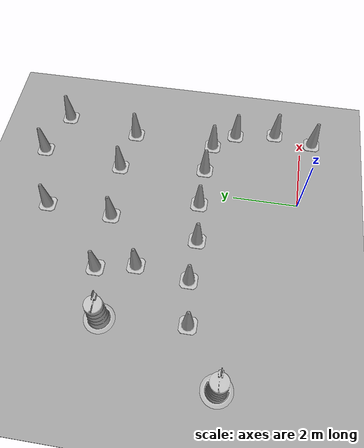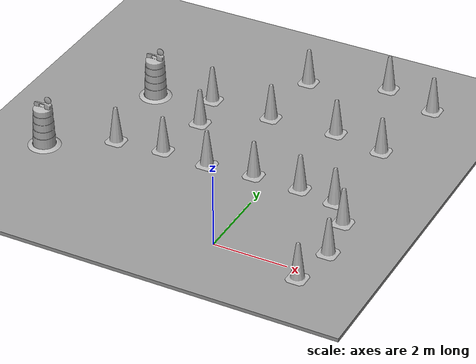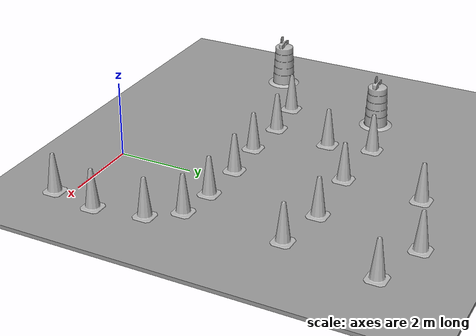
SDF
<sdf version="1.7">
 <world name="default">
  <light name="sun" type="directional">
   <pose>0 0 10 0 -0 0</pose>
   <diffuse>0.8 0.8 0.8 1</diffuse>
   <specular>0.2 0.2 0.2 1</specular>
   <attenuation>
    <range>1000</range>
    <constant>0.9</constant>
    <linear>0.01</linear>
    <quadratic>0.001</quadratic>
   </attenuation>
   <direction>-0.5 0.1 -0.9</direction>
   <spot><inner_angle>0</inner_angle><outer_angle>0</outer_angle><falloff>0</falloff></spot>
  </light>
  <model name="ground_plane">
   <static>1</static>
   <link name="link">
    <collision name="collision">
     <geometry><plane><normal>0 0 1</normal><size>100 100</size></plane></geometry>
     <surface><friction><ode><mu>100</mu><mu2>50</mu2></ode></friction></surface>
    </collision>
    <visual name="visual">
     <cast_shadows>0</cast_shadows>
     <geometry><plane><normal>0 0 1</normal><size>100 100</size></plane></geometry>
     <material>
      <script><uri>file://media/materials/scripts/gazebo.material</uri><name>Gazebo/Grey</name></script>
     </material>
    </visual>
   </link>
  </model>
  <gravity>0 0 -9.8</gravity>
  <magnetic_field>6e-06 2.3e-05 -4.2e-05</magnetic_field>
  <atmosphere type="adiabatic"/>
  <physics type="ode">
   <max_step_size>0.001</max_step_size>
   <real_time_factor>1</real_time_factor>
   <real_time_update_rate>1000</real_time_update_rate>
  </physics>
  <scene><ambient>0.4 0.4 0.4 1</ambient><background>0.7 0.7 0.7 1</background><shadows>1</shadows></scene>
  <audio><device>default</device></audio>
  <spherical_coordinates>
   <surface_model>EARTH_WGS84</surface_model>
   <latitude_deg>0</latitude_deg>
   <longitude_deg>0</longitude_deg>
   <elevation>0</elevation>
   <heading_deg>0</heading_deg>
  </spherical_coordinates>
  <model name="Construction Cone">
   <link name="link">
    <collision name="collision">
     <geometry>
      <mesh><scale>10 10 10</scale><uri>model://construction_cone/meshes/construction_cone.dae</uri></mesh>
     </geometry>
    </collision>
    <visual name="visual">
     <geometry>
      <mesh><scale>10 10 10</scale><uri>model://construction_cone/meshes/construction_cone.dae</uri></mesh>
     </geometry>
    </visual>
    <inertial>
     <inertia><ixx>1</ixx><ixy>0</ixy><ixz>0</ixz><iyy>1</iyy><iyz>0</iyz><izz>1</izz></inertia>
     <mass>1</mass>
    </inertial>
   </link>
   <pose>1.89637 2.9073 -0 0 -1e-06 0</pose>
  </model>
  <model name="Construction Cone_0">
   <link name="link">
    <collision name="collision">
     <geometry>
      <mesh><scale>10 10 10</scale><uri>model://construction_cone/meshes/construction_cone.dae</uri></mesh>
     </geometry>
    </collision>
    <visual name="visual">
     <geometry>
      <mesh><scale>10 10 10</scale><uri>model://construction_cone/meshes/construction_cone.dae</uri></mesh>
     </geometry>
    </visual>
    <inertial>
     <inertia><ixx>1</ixx><ixy>0</ixy><ixz>0</ixz><iyy>1</iyy><iyz>0</iyz><izz>1</izz></inertia>
     <mass>1</mass>
    </inertial>
   </link>
   <pose>2.46259 2.19439 -0 0 -1e-06 0</pose>
  </model>
  <model name="Construction Cone_1">
   <link name="link">
    <collision name="collision">
     <geometry>
      <mesh><scale>10 10 10</scale><uri>model://construction_cone/meshes/construction_cone.dae</uri></mesh>
     </geometry>
    </collision>
    <visual name="visual">
     <geometry>
      <mesh><scale>10 10 10</scale><uri>model://construction_cone/meshes/construction_cone.dae</uri></mesh>
     </geometry>
    </visual>
    <inertial>
     <inertia><ixx>1</ixx><ixy>0</ixy><ixz>0</ixz><iyy>1</iyy><iyz>0</iyz><izz>1</izz></inertia>
     <mass>1</mass>
    </inertial>
   </link>
   <pose>0.864255 3.03737 -0 0 -1e-06 0</pose>
  </model>
  <model name="Construction Cone_2">
   <link name="link">
    <collision name="collision">
     <geometry>
      <mesh><scale>10 10 10</scale><uri>model://construction_cone/meshes/construction_cone.dae</uri></mesh>
     </geometry>
    </collision>
    <visual name="visual">
     <geometry>
      <mesh><scale>10 10 10</scale><uri>model://construction_cone/meshes/construction_cone.dae</uri></mesh>
     </geometry>
    </visual>
    <inertial>
     <inertia><ixx>1</ixx><ixy>0</ixy><ixz>0</ixz><iyy>1</iyy><iyz>0</iyz><izz>1</izz></inertia>
     <mass>1</mass>
    </inertial>
   </link>
   <pose>-0.448605 3.04133 -0 0 -1e-06 0</pose>
  </model>
  <model name="Construction Cone_3">
   <link name="link">
    <collision name="collision">
     <geometry>
      <mesh><scale>10 10 10</scale><uri>model://construction_cone/meshes/construction_cone.dae</uri></mesh>
     </geometry>
    </collision>
    <visual name="visual">
     <geometry>
      <mesh><scale>10 10 10</scale><uri>model://construction_cone/meshes/construction_cone.dae</uri></mesh>
     </geometry>
    </visual>
    <inertial>
     <inertia><ixx>1</ixx><ixy>0</ixy><ixz>0</ixz><iyy>1</iyy><iyz>0</iyz><izz>1</izz></inertia>
     <mass>1</mass>
    </inertial>
   </link>
   <pose>-1.73905 2.926 -0 0 -1e-06 0</pose>
  </model>
  <model name="Construction Cone_4">
   <link name="link">
    <collision name="collision">
     <geometry>
      <mesh><scale>10 10 10</scale><uri>model://construction_cone/meshes/construction_cone.dae</uri></mesh>
     </geometry>
    </collision>
    <visual name="visual">
     <geometry>
      <mesh><scale>10 10 10</scale><uri>model://construction_cone/meshes/construction_cone.dae</uri></mesh>
     </geometry>
    </visual>
    <inertial>
     <inertia><ixx>1</ixx><ixy>0</ixy><ixz>0</ixz><iyy>1</iyy><iyz>0</iyz><izz>1</izz></inertia>
     <mass>1</mass>
    </inertial>
   </link>
   <pose>-3.04937 2.97932 -0 0 -1e-06 0</pose>
  </model>
  <model name="Construction Cone_5">
   <link name="link">
    <collision name="collision">
     <geometry>
      <mesh><scale>10 10 10</scale><uri>model://construction_cone/meshes/construction_cone.dae</uri></mesh>
     </geometry>
    </collision>
    <visual name="visual">
     <geometry>
      <mesh><scale>10 10 10</scale><uri>model://construction_cone/meshes/construction_cone.dae</uri></mesh>
     </geometry>
    </visual>
    <inertial>
     <inertia><ixx>1</ixx><ixy>0</ixy><ixz>0</ixz><iyy>1</iyy><iyz>0</iyz><izz>1</izz></inertia>
     <mass>1</mass>
    </inertial>
   </link>
   <pose>2.68382 0.884989 -0 0 -1e-06 0</pose>
  </model>
  <model name="Construction Cone_6">
   <link name="link">
    <collision name="collision">
     <geometry>
      <mesh><scale>10 10 10</scale><uri>model://construction_cone/meshes/construction_cone.dae</uri></mesh>
     </geometry>
    </collision>
    <visual name="visual">
     <geometry>
      <mesh><scale>10 10 10</scale><uri>model://construction_cone/meshes/construction_cone.dae</uri></mesh>
     </geometry>
    </visual>
    <inertial>
     <inertia><ixx>1</ixx><ixy>0</ixy><ixz>0</ixz><iyy>1</iyy><iyz>0</iyz><izz>1</izz></inertia>
     <mass>1</mass>
    </inertial>
   </link>
   <pose>-4.35322 2.81102 -0 0 -1e-06 0</pose>
  </model>
  <model name="ground_plane_0">
   <static>1</static>
   <link name="link">
    <collision name="collision">
     <geometry><plane><normal>0 0 1</normal><size>100 100</size></plane></geometry>
     <surface><friction><ode><mu>100</mu><mu2>50</mu2></ode></friction></surface>
    </collision>
    <visual name="visual">
     <cast_shadows>0</cast_shadows>
     <geometry><plane><normal>0 0 1</normal><size>100 100</size></plane></geometry>
     <material>
      <script><uri>file://media/materials/scripts/gazebo.material</uri><name>Gazebo/Grey</name></script>
     </material>
    </visual>
   </link>
   <pose>8.97795 26.3056 0 0 -0 0</pose>
  </model>
  <model name="Construction Barrel">
   <link name="link">
    <inertial>
     <pose>0 0 0.4 0 -0 0</pose>
     <mass>500</mass>
     <inertia><ixx>51.2096</ixx><iyy>51.2096</iyy><izz>25</izz><ixy>0</ixy><ixz>0</ixz><iyz>0</iyz></inertia>
    </inertial>
    <collision name="collision">
     <geometry><mesh><uri>model://construction_barrel/meshes/construction_barrel.dae</uri></mesh></geometry>
    </collision>
    <visual name="visual">
     <geometry><mesh><uri>model://construction_barrel/meshes/construction_barrel.dae</uri></mesh></geometry>
    </visual>
   </link>
   <pose>-5.94161 1.8286 -2e-06 -6e-06 -3e-06 -0.000116</pose>
  </model>
  <model name="Construction Cone_7">
   <link name="link">
    <collision name="collision">
     <geometry>
      <mesh><scale>10 10 10</scale><uri>model://construction_cone/meshes/construction_cone.dae</uri></mesh>
     </geometry>
    </collision>
    <visual name="visual">
     <geometry>
      <mesh><scale>10 10 10</scale><uri>model://construction_cone/meshes/construction_cone.dae</uri></mesh>
     </geometry>
    </visual>
    <inertial>
     <inertia><ixx>1</ixx><ixy>0</ixy><ixz>0</ixz><iyy>1</iyy><iyz>0</iyz><izz>1</izz></inertia>
     <mass>1</mass>
    </inertial>
   </link>
   <pose>2.46669 -0.362996 -0 0 -1e-06 0</pose>
  </model>
  <model name="Construction Cone_8">
   <link name="link">
    <collision name="collision">
     <geometry>
      <mesh><scale>10 10 10</scale><uri>model://construction_cone/meshes/construction_cone.dae</uri></mesh>
     </geometry>
    </collision>
    <visual name="visual">
     <geometry>
      <mesh><scale>10 10 10</scale><uri>model://construction_cone/meshes/construction_cone.dae</uri></mesh>
     </geometry>
    </visual>
    <inertial>
     <inertia><ixx>1</ixx><ixy>0</ixy><ixz>0</ixz><iyy>1</iyy><iyz>0</iyz><izz>1</izz></inertia>
     <mass>1</mass>
    </inertial>
   </link>
   <pose>-3.05939 5.72336 -0 0 -1e-06 0</pose>
  </model>
  <model name="Construction Cone_9">
   <link name="link">
    <collision name="collision">
     <geometry>
      <mesh><scale>10 10 10</scale><uri>model://construction_cone/meshes/construction_cone.dae</uri></mesh>
     </geometry>
    </collision>
    <visual name="visual">
     <geometry>
      <mesh><scale>10 10 10</scale><uri>model://construction_cone/meshes/construction_cone.dae</uri></mesh>
     </geometry>
    </visual>
    <inertial>
     <inertia><ixx>1</ixx><ixy>0</ixy><ixz>0</ixz><iyy>1</iyy><iyz>0</iyz><izz>1</izz></inertia>
     <mass>1</mass>
    </inertial>
   </link>
   <pose>-1.2755 5.65916 -0 0 -1e-06 0</pose>
  </model>
  <model name="Construction Barrel_0">
   <link name="link">
    <inertial>
     <pose>0 0 0.4 0 -0 0</pose>
     <mass>500</mass>
     <inertia><ixx>51.2096</ixx><iyy>51.2096</iyy><izz>25</izz><ixy>0</ixy><ixz>0</ixz><iyz>0</iyz></inertia>
    </inertial>
    <collision name="collision">
     <geometry><mesh><uri>model://construction_barrel/meshes/construction_barrel.dae</uri></mesh></geometry>
    </collision>
    <visual name="visual">
     <geometry><mesh><uri>model://construction_barrel/meshes/construction_barrel.dae</uri></mesh></geometry>
    </visual>
   </link>
   <pose>-4.5391 5.25217 -2e-06 -6e-06 -3e-06 -8.3e-05</pose>
  </model>
  <model name="Construction Cone_10">
   <link name="link">
    <collision name="collision">
     <geometry>
      <mesh><scale>10 10 10</scale><uri>model://construction_cone/meshes/construction_cone.dae</uri></mesh>
     </geometry>
    </collision>
    <visual name="visual">
     <geometry>
      <mesh><scale>10 10 10</scale><uri>model://construction_cone/meshes/construction_cone.dae</uri></mesh>
     </geometry>
    </visual>
    <inertial>
     <inertia><ixx>1</ixx><ixy>0</ixy><ixz>0</ixz><iyy>1</iyy><iyz>0</iyz><izz>1</izz></inertia>
     <mass>1</mass>
    </inertial>
   </link>
   <pose>0.573737 5.77779 -0 0 -1e-06 0</pose>
  </model>
  <model name="Construction Cone_11">
   <link name="link">
    <collision name="collision">
     <geometry>
      <mesh><scale>10 10 10</scale><uri>model://construction_cone/meshes/construction_cone.dae</uri></mesh>
     </geometry>
    </collision>
    <visual name="visual">
     <geometry>
      <mesh><scale>10 10 10</scale><uri>model://construction_cone/meshes/construction_cone.dae</uri></mesh>
     </geometry>
    </visual>
    <inertial>
     <inertia><ixx>1</ixx><ixy>0</ixy><ixz>0</ixz><iyy>1</iyy><iyz>0</iyz><izz>1</izz></inertia>
     <mass>1</mass>
    </inertial>
   </link>
   <pose>-1.16662 7.71389 -0 0 -1e-06 0</pose>
  </model>
  <model name="Construction Cone_12">
   <link name="link">
    <collision name="collision">
     <geometry>
      <mesh><scale>10 10 10</scale><uri>model://construction_cone/meshes/construction_cone.dae</uri></mesh>
     </geometry>
    </collision>
    <visual name="visual">
     <geometry>
      <mesh><scale>10 10 10</scale><uri>model://construction_cone/meshes/construction_cone.dae</uri></mesh>
     </geometry>
    </visual>
    <inertial>
     <inertia><ixx>1</ixx><ixy>0</ixy><ixz>0</ixz><iyy>1</iyy><iyz>0</iyz><izz>1</izz></inertia>
     <mass>1</mass>
    </inertial>
   </link>
   <pose>0.903423 8.40257 -0 0 -1e-06 0</pose>
  </model>
  <model name="Construction Cone_13">
   <link name="link">
    <collision name="collision">
     <geometry>
      <mesh><scale>10 10 10</scale><uri>model://construction_cone/meshes/construction_cone.dae</uri></mesh>
     </geometry>
    </collision>
    <visual name="visual">
     <geometry>
      <mesh><scale>10 10 10</scale><uri>model://construction_cone/meshes/construction_cone.dae</uri></mesh>
     </geometry>
    </visual>
    <inertial>
     <inertia><ixx>1</ixx><ixy>0</ixy><ixz>0</ixz><iyy>1</iyy><iyz>0</iyz><izz>1</izz></inertia>
     <mass>1</mass>
    </inertial>
   </link>
   <pose>-2.81802 4.57121 -0 0 -1e-06 0</pose>
  </model>
  <model name="Construction Cone_14">
   <link name="link">
    <collision name="collision">
     <geometry>
      <mesh><scale>10 10 10</scale><uri>model://construction_cone/meshes/construction_cone.dae</uri></mesh>
     </geometry>
    </collision>
    <visual name="visual">
     <geometry>
      <mesh><scale>10 10 10</scale><uri>model://construction_cone/meshes/construction_cone.dae</uri></mesh>
     </geometry>
    </visual>
    <inertial>
     <inertia><ixx>1</ixx><ixy>0</ixy><ixz>0</ixz><iyy>1</iyy><iyz>0</iyz><izz>1</izz></inertia>
     <mass>1</mass>
    </inertial>
   </link>
   <pose>1.98487 5.53381 -0 0 -1e-06 0</pose>
  </model>
  <model name="Construction Cone_15">
   <link name="link">
    <collision name="collision">
     <geometry>
      <mesh><scale>10 10 10</scale><uri>model://construction_cone/meshes/construction_cone.dae</uri></mesh>
     </geometry>
    </collision>
    <visual name="visual">
     <geometry>
      <mesh><scale>10 10 10</scale><uri>model://construction_cone/meshes/construction_cone.dae</uri></mesh>
     </geometry>
    </visual>
    <inertial>
     <inertia><ixx>1</ixx><ixy>0</ixy><ixz>0</ixz><iyy>1</iyy><iyz>0</iyz><izz>1</izz></inertia>
     <mass>1</mass>
    </inertial>
   </link>
   <pose>2.38483 7.93739 -1e-05 0 -0 0</pose>
  </model>
 </world>
</sdf>
